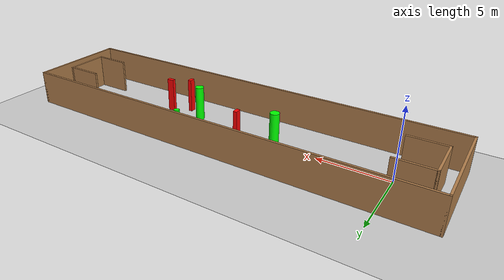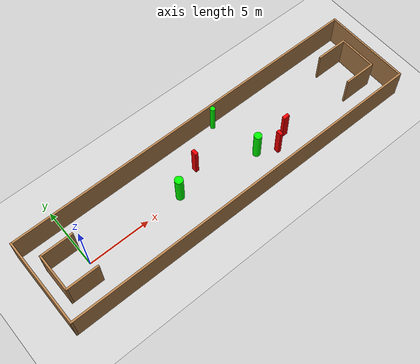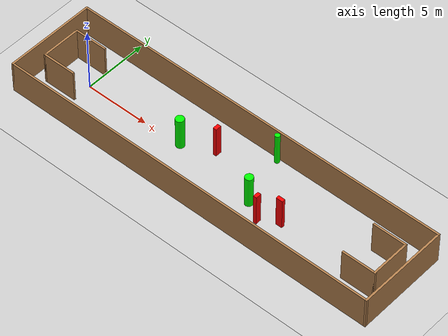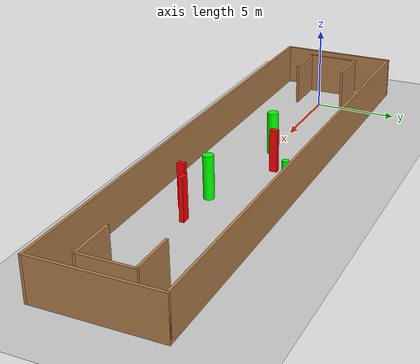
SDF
<sdf version="1.7">
 <world name="default">
  <light name="sun" type="directional">
   <pose>0 0 10 0 -0 0</pose>
   <diffuse>0.8 0.8 0.8 1</diffuse>
   <specular>0.2 0.2 0.2 1</specular>
   <attenuation>
    <range>1000</range>
    <constant>0.9</constant>
    <linear>0.01</linear>
    <quadratic>0.001</quadratic>
   </attenuation>
   <direction>-0.5 0.1 -0.9</direction>
   <spot><inner_angle>0</inner_angle><outer_angle>0</outer_angle><falloff>0</falloff></spot>
  </light>
  <model name="ground_plane">
   <static>1</static>
   <link name="link">
    <collision name="collision">
     <geometry><plane><normal>0 0 1</normal><size>100 100</size></plane></geometry>
     <surface>
      <contact><collide_bitmask>65535</collide_bitmask></contact>
      <friction><ode><mu>100</mu><mu2>50</mu2></ode></friction>
     </surface>
    </collision>
    <visual name="visual">
     <cast_shadows>0</cast_shadows>
     <geometry><plane><normal>0 0 1</normal><size>100 100</size></plane></geometry>
     <material>
      <script><uri>file://media/materials/scripts/gazebo.material</uri><name>Gazebo/Grey</name></script>
     </material>
    </visual>
   </link>
  </model>
  <gravity>0 0 -9.8</gravity>
  <magnetic_field>6e-06 2.3e-05 -4.2e-05</magnetic_field>
  <atmosphere type="adiabatic"/>
  <physics type="ode">
   <max_step_size>0.001</max_step_size>
   <real_time_factor>1</real_time_factor>
   <real_time_update_rate>1000</real_time_update_rate>
  </physics>
  <scene><ambient>0.4 0.4 0.4 1</ambient><background>0.7 0.7 0.7 1</background><shadows>1</shadows></scene>
  <spherical_coordinates>
   <surface_model>EARTH_WGS84</surface_model>
   <latitude_deg>0</latitude_deg>
   <longitude_deg>0</longitude_deg>
   <elevation>0</elevation>
   <heading_deg>0</heading_deg>
  </spherical_coordinates>
  <model name="my_base_walls">
   <link name="Wall_0">
    <collision name="Wall_0_Collision">
     <geometry><box><size>7.15 0.15 2.5</size></box></geometry>
     <pose>0 0 1.25 0 -0 0</pose>
    </collision>
    <visual name="Wall_0_Visual">
     <pose>0 0 1.25 0 -0 0</pose>
     <geometry><box><size>7.15 0.15 2.5</size></box></geometry>
     <material>
      <script><uri>file://media/materials/scripts/gazebo.material</uri><name>Gazebo/Wood</name></script>
      <ambient>1 1 1 1</ambient>
     </material>
     <meta><layer>0</layer></meta>
    </visual>
    <pose>-15 0 0 0 -0 1.5708</pose>
   </link>
   <link name="Wall_10">
    <collision name="Wall_10_Collision">
     <geometry><box><size>2.65 0.15 2.5</size></box></geometry>
     <pose>0 0 1.25 0 -0 0</pose>
    </collision>
    <visual name="Wall_10_Visual">
     <pose>0 0 1.25 0 -0 0</pose>
     <geometry><box><size>2.65 0.15 2.5</size></box></geometry>
     <material>
      <script><uri>file://media/materials/scripts/gazebo.material</uri><name>Gazebo/Wood</name></script>
      <ambient>1 1 1 1</ambient>
     </material>
     <meta><layer>0</layer></meta>
    </visual>
    <pose>-12.75 -1.5 0 0 -0 0</pose>
   </link>
   <link name="Wall_12">
    <collision name="Wall_12_Collision">
     <geometry><box><size>2.65 0.15 2.5</size></box></geometry>
     <pose>0 0 1.25 0 -0 0</pose>
    </collision>
    <visual name="Wall_12_Visual">
     <pose>0 0 1.25 0 -0 0</pose>
     <geometry><box><size>2.65 0.15 2.5</size></box></geometry>
     <material>
      <script><uri>file://media/materials/scripts/gazebo.material</uri><name>Gazebo/Wood</name></script>
      <ambient>1 1 1 1</ambient>
     </material>
     <meta><layer>0</layer></meta>
    </visual>
    <pose>-12.75 1.5 0 0 -0 0</pose>
   </link>
   <link name="Wall_14">
    <collision name="Wall_14_Collision">
     <geometry><box><size>3.15 0.15 2.5</size></box></geometry>
     <pose>0 0 1.25 0 -0 0</pose>
    </collision>
    <visual name="Wall_14_Visual">
     <pose>0 0 1.25 0 -0 0</pose>
     <geometry><box><size>3.15 0.15 2.5</size></box></geometry>
     <material>
      <script><uri>file://media/materials/scripts/gazebo.material</uri><name>Gazebo/Wood</name></script>
      <ambient>1 1 1 1</ambient>
     </material>
     <meta><layer>0</layer></meta>
    </visual>
    <pose>14 0 0 0 -0 -1.5708</pose>
   </link>
   <link name="Wall_15">
    <collision name="Wall_15_Collision">
     <geometry><box><size>2.65 0.15 2.5</size></box></geometry>
     <pose>0 0 1.25 0 -0 0</pose>
    </collision>
    <visual name="Wall_15_Visual">
     <pose>0 0 1.25 0 -0 0</pose>
     <geometry><box><size>2.65 0.15 2.5</size></box></geometry>
     <material>
      <script><uri>file://media/materials/scripts/gazebo.material</uri><name>Gazebo/Wood</name></script>
      <ambient>1 1 1 1</ambient>
     </material>
     <meta><layer>0</layer></meta>
    </visual>
    <pose>12.75 -1.5 0 0 -0 3.14159</pose>
   </link>
   <link name="Wall_17">
    <collision name="Wall_17_Collision">
     <geometry><box><size>2.65 0.15 2.5</size></box></geometry>
     <pose>0 0 1.25 0 -0 0</pose>
    </collision>
    <visual name="Wall_17_Visual">
     <pose>0 0 1.25 0 -0 0</pose>
     <geometry><box><size>2.65 0.15 2.5</size></box></geometry>
     <material>
      <script><uri>file://media/materials/scripts/gazebo.material</uri><name>Gazebo/Wood</name></script>
      <ambient>1 1 1 1</ambient>
     </material>
     <meta><layer>0</layer></meta>
    </visual>
    <pose>12.75 1.5 0 0 -0 3.14159</pose>
   </link>
   <link name="Wall_2">
    <collision name="Wall_2_Collision">
     <geometry><box><size>30.15 0.15 2.5</size></box></geometry>
     <pose>0 0 1.25 0 -0 0</pose>
    </collision>
    <visual name="Wall_2_Visual">
     <pose>0 0 1.25 0 -0 0</pose>
     <geometry><box><size>30.15 0.15 2.5</size></box></geometry>
     <material>
      <script><uri>file://media/materials/scripts/gazebo.material</uri><name>Gazebo/Wood</name></script>
      <ambient>1 1 1 1</ambient>
     </material>
     <meta><layer>0</layer></meta>
    </visual>
    <pose>-0 -3.5 0 0 -0 0</pose>
   </link>
   <link name="Wall_4">
    <collision name="Wall_4_Collision">
     <geometry><box><size>30.15 0.15 2.5</size></box></geometry>
     <pose>0 0 1.25 0 -0 0</pose>
    </collision>
    <visual name="Wall_4_Visual">
     <pose>0 0 1.25 0 -0 0</pose>
     <geometry><box><size>30.15 0.15 2.5</size></box></geometry>
     <material>
      <script><uri>file://media/materials/scripts/gazebo.material</uri><name>Gazebo/Wood</name></script>
      <ambient>1 1 1 1</ambient>
     </material>
     <meta><layer>0</layer></meta>
    </visual>
    <pose>-0 3.5 0 0 -0 0</pose>
   </link>
   <link name="Wall_6">
    <collision name="Wall_6_Collision">
     <geometry><box><size>7.15 0.15 2.5</size></box></geometry>
     <pose>0 0 1.25 0 -0 0</pose>
    </collision>
    <visual name="Wall_6_Visual">
     <pose>0 0 1.25 0 -0 0</pose>
     <geometry><box><size>7.15 0.15 2.5</size></box></geometry>
     <material>
      <script><uri>file://media/materials/scripts/gazebo.material</uri><name>Gazebo/Wood</name></script>
      <ambient>1 1 1 1</ambient>
     </material>
     <meta><layer>0</layer></meta>
    </visual>
    <pose>15 0 0 0 -0 -1.5708</pose>
   </link>
   <link name="Wall_9">
    <collision name="Wall_9_Collision">
     <geometry><box><size>3.15 0.15 2.5</size></box></geometry>
     <pose>0 0 1.25 0 -0 0</pose>
    </collision>
    <visual name="Wall_9_Visual">
     <pose>0 0 1.25 0 -0 0</pose>
     <geometry><box><size>3.15 0.15 2.5</size></box></geometry>
     <material>
      <script><uri>file://media/materials/scripts/gazebo.material</uri><name>Gazebo/Wood</name></script>
      <ambient>1 1 1 1</ambient>
     </material>
     <meta><layer>0</layer></meta>
    </visual>
    <pose>-14 0 0 0 -0 -1.5708</pose>
   </link>
   <static>1</static>
   <pose>11.5 0 0 0 -0 0</pose>
  </model>
  <model name="cylinder1">
   <static>1</static>
   <link name="link">
    <inertial>
     <mass>1</mass>
     <inertia><ixx>0.5</ixx><ixy>0</ixy><ixz>0</ixz><iyy>0.5</iyy><iyz>0</iyz><izz>1</izz></inertia>
    </inertial>
    <collision name="collision">
     <geometry><cylinder><radius>0.3260970070780593</radius><length>2.5</length></cylinder></geometry>
    </collision>
    <visual name="visual">
     <geometry><cylinder><radius>0.3260970070780593</radius><length>2.5</length></cylinder></geometry>
     <material>
      <ambient>0 1 0 1</ambient>
      <diffuse>0 1 0 1</diffuse>
      <specular>0.1 0.1 0.1 1</specular>
      <emissive>0 0 0 0</emissive>
     </material>
    </visual>
   </link>
   <pose>7.993582323157288 0.09960428489258133 1.25 0 0 0</pose>
  </model>
  <model name="cylinder2">
   <static>1</static>
   <link name="link">
    <inertial>
     <mass>1</mass>
     <inertia><ixx>0.5</ixx><ixy>0</ixy><ixz>0</ixz><iyy>0.5</iyy><iyz>0</iyz><izz>1</izz></inertia>
    </inertial>
    <collision name="collision">
     <geometry><cylinder><radius>0.3046165029809549</radius><length>2.5</length></cylinder></geometry>
    </collision>
    <visual name="visual">
     <geometry><cylinder><radius>0.3046165029809549</radius><length>2.5</length></cylinder></geometry>
     <material>
      <ambient>0 1 0 1</ambient>
      <diffuse>0 1 0 1</diffuse>
      <specular>0.1 0.1 0.1 1</specular>
      <emissive>0 0 0 0</emissive>
     </material>
    </visual>
   </link>
   <pose>14.627387382963295 -0.716131678168983 1.25 0 0 0</pose>
  </model>
  <model name="cylinder3">
   <static>1</static>
   <link name="link">
    <inertial>
     <mass>1</mass>
     <inertia><ixx>0.5</ixx><ixy>0</ixy><ixz>0</ixz><iyy>0.5</iyy><iyz>0</iyz><izz>1</izz></inertia>
    </inertial>
    <collision name="collision">
     <geometry><cylinder><radius>0.18909742453973433</radius><length>2.5</length></cylinder></geometry>
    </collision>
    <visual name="visual">
     <geometry><cylinder><radius>0.18909742453973433</radius><length>2.5</length></cylinder></geometry>
     <material>
      <ambient>0 1 0 1</ambient>
      <diffuse>0 1 0 1</diffuse>
      <specular>0.1 0.1 0.1 1</specular>
      <emissive>0 0 0 0</emissive>
     </material>
    </visual>
   </link>
   <pose>13.626234453541954 3.186428312999789 1.25 0 0 0</pose>
  </model>
  <model name="box1">
   <static>1</static>
   <link name="link">
    <inertial>
     <mass>1</mass>
     <inertia><ixx>0.083</ixx><ixy>0</ixy><ixz>0</ixz><iyy>0.083</iyy><iyz>0</iyz><izz>0.083</izz></inertia>
    </inertial>
    <collision name="collision">
     <geometry><box><size>0.2632484471870187 0.4359963189502455 2.5</size></box></geometry>
    </collision>
    <visual name="visual">
     <geometry><box><size>0.2632484471870187 0.4359963189502455 2.5</size></box></geometry>
     <material>
      <ambient>1 0 0 1</ambient>
      <diffuse>1 0 0 1</diffuse>
      <specular>0.1 0.1 0.1 1</specular>
      <emissive>0 0 0 0</emissive>
     </material>
    </visual>
    <sensor name="my_contact" type="contact">
     <contact><collision>box_collision</collision><topic>__default_topic__</topic></contact>
    </sensor>
   </link>
   <pose>16.00568802394896 -1.5262103892640764 1.25 0 0 0</pose>
  </model>
  <model name="box2">
   <static>1</static>
   <link name="link">
    <inertial>
     <mass>1</mass>
     <inertia><ixx>0.083</ixx><ixy>0</ixy><ixz>0</ixz><iyy>0.083</iyy><iyz>0</iyz><izz>0.083</izz></inertia>
    </inertial>
    <collision name="collision">
     <geometry><box><size>0.5112427562482327 0.25804841476223017 2.5</size></box></geometry>
    </collision>
    <visual name="visual">
     <geometry><box><size>0.5112427562482327 0.25804841476223017 2.5</size></box></geometry>
     <material>
      <ambient>1 0 0 1</ambient>
      <diffuse>1 0 0 1</diffuse>
      <specular>0.1 0.1 0.1 1</specular>
      <emissive>0 0 0 0</emissive>
     </material>
    </visual>
    <sensor name="my_contact" type="contact">
     <contact><collision>box_collision</collision><topic>__default_topic__</topic></contact>
    </sensor>
   </link>
   <pose>17.295931510844923 -0.7798210921996818 1.25 0 0 0</pose>
  </model>
  <model name="box3">
   <static>1</static>
   <link name="link">
    <inertial>
     <mass>1</mass>
     <inertia><ixx>0.083</ixx><ixy>0</ixy><ixz>0</ixz><iyy>0.083</iyy><iyz>0</iyz><izz>0.083</izz></inertia>
    </inertial>
    <collision name="collision">
     <geometry><box><size>0.2770116232387437 0.45782919248754 2.5</size></box></geometry>
    </collision>
    <visual name="visual">
     <geometry><box><size>0.2770116232387437 0.45782919248754 2.5</size></box></geometry>
     <material>
      <ambient>1 0 0 1</ambient>
      <diffuse>1 0 0 1</diffuse>
      <specular>0.1 0.1 0.1 1</specular>
      <emissive>0 0 0 0</emissive>
     </material>
    </visual>
    <sensor name="my_contact" type="contact">
     <contact><collision>box_collision</collision><topic>__default_topic__</topic></contact>
    </sensor>
   </link>
   <pose>10.262763459103592 1.1394693391883441 1.25 0 0 0</pose>
  </model>
 </world>
</sdf>
